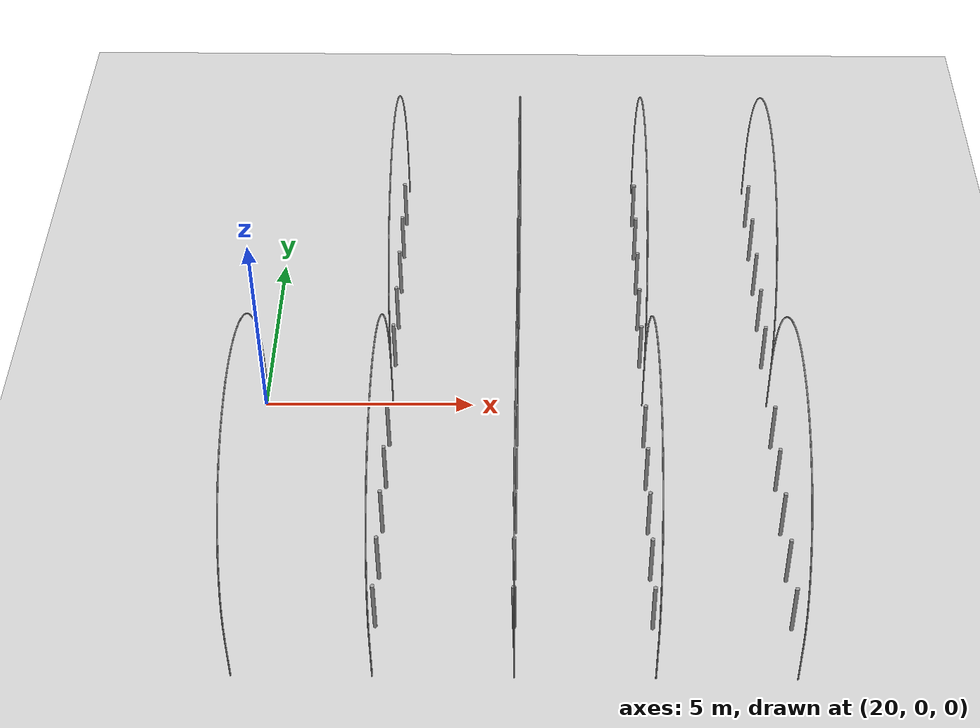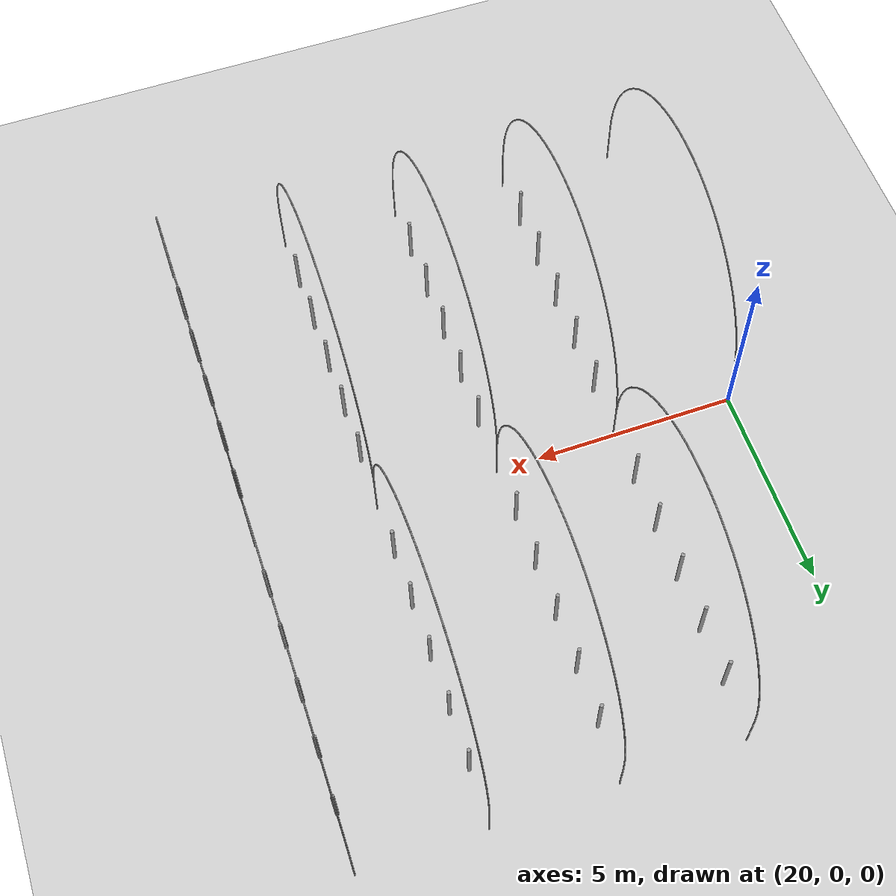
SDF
<sdf version="1.4">
 <world name="default">
  <model name="unit_cylinder_30">
   <static>1</static>
   <pose>23.06 1.35 0.691175 0.0 0.0 0.0</pose>
   <link name="link">
    <inertial>
     <mass>1</mass>
     <inertia><ixz>0</ixz><ixx>1</ixx><ixy>0</ixy><izz>1</izz><iyy>1</iyy><iyz>0</iyz></inertia>
    </inertial>
    <collision name="collision">
     <geometry><cylinder><length>1.38235</length><radius>0.0456111</radius></cylinder></geometry>
    </collision>
    <visual name="visual">
     <geometry><cylinder><length>1.38235</length><radius>0.0456111</radius></cylinder></geometry>
     <material>
      <script><uri>file://media/materials/scripts/gazebo.material</uri><name>Gazebo/Grey</name></script>
     </material>
    </visual>
    <velocity_decay><linear>0</linear><angular>0</angular></velocity_decay>
   </link>
  </model>
  <model name="unit_cylinder_31">
   <static>1</static>
   <pose>23.06 2.70 0.691175 0.0 0.0 0.0</pose>
   <link name="link">
    <inertial>
     <mass>1</mass>
     <inertia><ixz>0</ixz><ixx>1</ixx><ixy>0</ixy><izz>1</izz><iyy>1</iyy><iyz>0</iyz></inertia>
    </inertial>
    <collision name="collision">
     <geometry><cylinder><length>1.38235</length><radius>0.0456111</radius></cylinder></geometry>
    </collision>
    <visual name="visual">
     <geometry><cylinder><length>1.38235</length><radius>0.0456111</radius></cylinder></geometry>
     <material>
      <script><uri>file://media/materials/scripts/gazebo.material</uri><name>Gazebo/Grey</name></script>
     </material>
    </visual>
    <velocity_decay><linear>0</linear><angular>0</angular></velocity_decay>
   </link>
  </model>
  <model name="unit_cylinder_32">
   <static>1</static>
   <pose>23.06 4.05 0.691175 0.0 0.0 0.0</pose>
   <link name="link">
    <inertial>
     <mass>1</mass>
     <inertia><ixz>0</ixz><ixx>1</ixx><ixy>0</ixy><izz>1</izz><iyy>1</iyy><iyz>0</iyz></inertia>
    </inertial>
    <collision name="collision">
     <geometry><cylinder><length>1.38235</length><radius>0.0456111</radius></cylinder></geometry>
    </collision>
    <visual name="visual">
     <geometry><cylinder><length>1.38235</length><radius>0.0456111</radius></cylinder></geometry>
     <material>
      <script><uri>file://media/materials/scripts/gazebo.material</uri><name>Gazebo/Grey</name></script>
     </material>
    </visual>
    <velocity_decay><linear>0</linear><angular>0</angular></velocity_decay>
   </link>
  </model>
  <model name="unit_cylinder_33">
   <static>1</static>
   <pose>23.06 5.40 0.691175 0.0 0.0 0.0</pose>
   <link name="link">
    <inertial>
     <mass>1</mass>
     <inertia><ixz>0</ixz><ixx>1</ixx><ixy>0</ixy><izz>1</izz><iyy>1</iyy><iyz>0</iyz></inertia>
    </inertial>
    <collision name="collision">
     <geometry><cylinder><length>1.38235</length><radius>0.0456111</radius></cylinder></geometry>
    </collision>
    <visual name="visual">
     <geometry><cylinder><length>1.38235</length><radius>0.0456111</radius></cylinder></geometry>
     <material>
      <script><uri>file://media/materials/scripts/gazebo.material</uri><name>Gazebo/Grey</name></script>
     </material>
    </visual>
    <velocity_decay><linear>0</linear><angular>0</angular></velocity_decay>
   </link>
  </model>
  <model name="unit_cylinder_34">
   <static>1</static>
   <pose>23.06 6.75 0.691175 0.0 0.0 0.0</pose>
   <link name="link">
    <inertial>
     <mass>1</mass>
     <inertia><ixz>0</ixz><ixx>1</ixx><ixy>0</ixy><izz>1</izz><iyy>1</iyy><iyz>0</iyz></inertia>
    </inertial>
    <collision name="collision">
     <geometry><cylinder><length>1.38235</length><radius>0.0456111</radius></cylinder></geometry>
    </collision>
    <visual name="visual">
     <geometry><cylinder><length>1.38235</length><radius>0.0456111</radius></cylinder></geometry>
     <material>
      <script><uri>file://media/materials/scripts/gazebo.material</uri><name>Gazebo/Grey</name></script>
     </material>
    </visual>
    <velocity_decay><linear>0</linear><angular>0</angular></velocity_decay>
   </link>
  </model>
  <model name="unit_cylinder_35">
   <static>1</static>
   <pose>26.07 1.35 0.691175 0.0 0.0 0.0</pose>
   <link name="link">
    <inertial>
     <mass>1</mass>
     <inertia><ixz>0</ixz><ixx>1</ixx><ixy>0</ixy><izz>1</izz><iyy>1</iyy><iyz>0</iyz></inertia>
    </inertial>
    <collision name="collision">
     <geometry><cylinder><length>1.38235</length><radius>0.0456111</radius></cylinder></geometry>
    </collision>
    <visual name="visual">
     <geometry><cylinder><length>1.38235</length><radius>0.0456111</radius></cylinder></geometry>
     <material>
      <script><uri>file://media/materials/scripts/gazebo.material</uri><name>Gazebo/Grey</name></script>
     </material>
    </visual>
    <velocity_decay><linear>0</linear><angular>0</angular></velocity_decay>
   </link>
  </model>
  <model name="unit_cylinder_36">
   <static>1</static>
   <pose>26.07 2.70 0.691175 0.0 0.0 0.0</pose>
   <link name="link">
    <inertial>
     <mass>1</mass>
     <inertia><ixz>0</ixz><ixx>1</ixx><ixy>0</ixy><izz>1</izz><iyy>1</iyy><iyz>0</iyz></inertia>
    </inertial>
    <collision name="collision">
     <geometry><cylinder><length>1.38235</length><radius>0.0456111</radius></cylinder></geometry>
    </collision>
    <visual name="visual">
     <geometry><cylinder><length>1.38235</length><radius>0.0456111</radius></cylinder></geometry>
     <material>
      <script><uri>file://media/materials/scripts/gazebo.material</uri><name>Gazebo/Grey</name></script>
     </material>
    </visual>
    <velocity_decay><linear>0</linear><angular>0</angular></velocity_decay>
   </link>
  </model>
  <model name="unit_cylinder_37">
   <static>1</static>
   <pose>26.07 4.05 0.691175 0.0 0.0 0.0</pose>
   <link name="link">
    <inertial>
     <mass>1</mass>
     <inertia><ixz>0</ixz><ixx>1</ixx><ixy>0</ixy><izz>1</izz><iyy>1</iyy><iyz>0</iyz></inertia>
    </inertial>
    <collision name="collision">
     <geometry><cylinder><length>1.38235</length><radius>0.0456111</radius></cylinder></geometry>
    </collision>
    <visual name="visual">
     <geometry><cylinder><length>1.38235</length><radius>0.0456111</radius></cylinder></geometry>
     <material>
      <script><uri>file://media/materials/scripts/gazebo.material</uri><name>Gazebo/Grey</name></script>
     </material>
    </visual>
    <velocity_decay><linear>0</linear><angular>0</angular></velocity_decay>
   </link>
  </model>
  <model name="unit_cylinder_38">
   <static>1</static>
   <pose>26.07 5.40 0.691175 0.0 0.0 0.0</pose>
   <link name="link">
    <inertial>
     <mass>1</mass>
     <inertia><ixz>0</ixz><ixx>1</ixx><ixy>0</ixy><izz>1</izz><iyy>1</iyy><iyz>0</iyz></inertia>
    </inertial>
    <collision name="collision">
     <geometry><cylinder><length>1.38235</length><radius>0.0456111</radius></cylinder></geometry>
    </collision>
    <visual name="visual">
     <geometry><cylinder><length>1.38235</length><radius>0.0456111</radius></cylinder></geometry>
     <material>
      <script><uri>file://media/materials/scripts/gazebo.material</uri><name>Gazebo/Grey</name></script>
     </material>
    </visual>
    <velocity_decay><linear>0</linear><angular>0</angular></velocity_decay>
   </link>
  </model>
  <model name="unit_cylinder_39">
   <static>1</static>
   <pose>26.07 6.75 0.691175 0.0 0.0 0.0</pose>
   <link name="link">
    <inertial>
     <mass>1</mass>
     <inertia><ixz>0</ixz><ixx>1</ixx><ixy>0</ixy><izz>1</izz><iyy>1</iyy><iyz>0</iyz></inertia>
    </inertial>
    <collision name="collision">
     <geometry><cylinder><length>1.38235</length><radius>0.0456111</radius></cylinder></geometry>
    </collision>
    <visual name="visual">
     <geometry><cylinder><length>1.38235</length><radius>0.0456111</radius></cylinder></geometry>
     <material>
      <script><uri>file://media/materials/scripts/gazebo.material</uri><name>Gazebo/Grey</name></script>
     </material>
    </visual>
    <velocity_decay><linear>0</linear><angular>0</angular></velocity_decay>
   </link>
  </model>
  <model name="unit_cylinder_40">
   <static>1</static>
   <pose>29.08 1.35 0.691175 0.0 0.0 0.0</pose>
   <link name="link">
    <inertial>
     <mass>1</mass>
     <inertia><ixz>0</ixz><ixx>1</ixx><ixy>0</ixy><izz>1</izz><iyy>1</iyy><iyz>0</iyz></inertia>
    </inertial>
    <collision name="collision">
     <geometry><cylinder><length>1.38235</length><radius>0.0456111</radius></cylinder></geometry>
    </collision>
    <visual name="visual">
     <geometry><cylinder><length>1.38235</length><radius>0.0456111</radius></cylinder></geometry>
     <material>
      <script><uri>file://media/materials/scripts/gazebo.material</uri><name>Gazebo/Grey</name></script>
     </material>
    </visual>
    <velocity_decay><linear>0</linear><angular>0</angular></velocity_decay>
   </link>
  </model>
  <model name="unit_cylinder_41">
   <static>1</static>
   <pose>29.08 2.70 0.691175 0.0 0.0 0.0</pose>
   <link name="link">
    <inertial>
     <mass>1</mass>
     <inertia><ixz>0</ixz><ixx>1</ixx><ixy>0</ixy><izz>1</izz><iyy>1</iyy><iyz>0</iyz></inertia>
    </inertial>
    <collision name="collision">
     <geometry><cylinder><length>1.38235</length><radius>0.0456111</radius></cylinder></geometry>
    </collision>
    <visual name="visual">
     <geometry><cylinder><length>1.38235</length><radius>0.0456111</radius></cylinder></geometry>
     <material>
      <script><uri>file://media/materials/scripts/gazebo.material</uri><name>Gazebo/Grey</name></script>
     </material>
    </visual>
    <velocity_decay><linear>0</linear><angular>0</angular></velocity_decay>
   </link>
  </model>
  <model name="unit_cylinder_42">
   <static>1</static>
   <pose>29.08 4.05 0.691175 0.0 0.0 0.0</pose>
   <link name="link">
    <inertial>
     <mass>1</mass>
     <inertia><ixz>0</ixz><ixx>1</ixx><ixy>0</ixy><izz>1</izz><iyy>1</iyy><iyz>0</iyz></inertia>
    </inertial>
    <collision name="collision">
     <geometry><cylinder><length>1.38235</length><radius>0.0456111</radius></cylinder></geometry>
    </collision>
    <visual name="visual">
     <geometry><cylinder><length>1.38235</length><radius>0.0456111</radius></cylinder></geometry>
     <material>
      <script><uri>file://media/materials/scripts/gazebo.material</uri><name>Gazebo/Grey</name></script>
     </material>
    </visual>
    <velocity_decay><linear>0</linear><angular>0</angular></velocity_decay>
   </link>
  </model>
  <model name="unit_cylinder_43">
   <static>1</static>
   <pose>29.08 5.40 0.691175 0.0 0.0 0.0</pose>
   <link name="link">
    <inertial>
     <mass>1</mass>
     <inertia><ixz>0</ixz><ixx>1</ixx><ixy>0</ixy><izz>1</izz><iyy>1</iyy><iyz>0</iyz></inertia>
    </inertial>
    <collision name="collision">
     <geometry><cylinder><length>1.38235</length><radius>0.0456111</radius></cylinder></geometry>
    </collision>
    <visual name="visual">
     <geometry><cylinder><length>1.38235</length><radius>0.0456111</radius></cylinder></geometry>
     <material>
      <script><uri>file://media/materials/scripts/gazebo.material</uri><name>Gazebo/Grey</name></script>
     </material>
    </visual>
    <velocity_decay><linear>0</linear><angular>0</angular></velocity_decay>
   </link>
  </model>
  <model name="unit_cylinder_44">
   <static>1</static>
   <pose>29.08 6.75 0.691175 0.0 0.0 0.0</pose>
   <link name="link">
    <inertial>
     <mass>1</mass>
     <inertia><ixz>0</ixz><ixx>1</ixx><ixy>0</ixy><izz>1</izz><iyy>1</iyy><iyz>0</iyz></inertia>
    </inertial>
    <collision name="collision">
     <geometry><cylinder><length>1.38235</length><radius>0.0456111</radius></cylinder></geometry>
    </collision>
    <visual name="visual">
     <geometry><cylinder><length>1.38235</length><radius>0.0456111</radius></cylinder></geometry>
     <material>
      <script><uri>file://media/materials/scripts/gazebo.material</uri><name>Gazebo/Grey</name></script>
     </material>
    </visual>
    <velocity_decay><linear>0</linear><angular>0</angular></velocity_decay>
   </link>
  </model>
  <model name="unit_cylinder_45">
   <static>1</static>
   <pose>32.09 1.35 0.691175 0.0 0.0 0.0</pose>
   <link name="link">
    <inertial>
     <mass>1</mass>
     <inertia><ixz>0</ixz><ixx>1</ixx><ixy>0</ixy><izz>1</izz><iyy>1</iyy><iyz>0</iyz></inertia>
    </inertial>
    <collision name="collision">
     <geometry><cylinder><length>1.38235</length><radius>0.0456111</radius></cylinder></geometry>
    </collision>
    <visual name="visual">
     <geometry><cylinder><length>1.38235</length><radius>0.0456111</radius></cylinder></geometry>
     <material>
      <script><uri>file://media/materials/scripts/gazebo.material</uri><name>Gazebo/Grey</name></script>
     </material>
    </visual>
    <velocity_decay><linear>0</linear><angular>0</angular></velocity_decay>
   </link>
  </model>
  <model name="unit_cylinder_46">
   <static>1</static>
   <pose>32.09 2.70 0.691175 0.0 0.0 0.0</pose>
   <link name="link">
    <inertial>
     <mass>1</mass>
     <inertia><ixz>0</ixz><ixx>1</ixx><ixy>0</ixy><izz>1</izz><iyy>1</iyy><iyz>0</iyz></inertia>
    </inertial>
    <collision name="collision">
     <geometry><cylinder><length>1.38235</length><radius>0.0456111</radius></cylinder></geometry>
    </collision>
    <visual name="visual">
     <geometry><cylinder><length>1.38235</length><radius>0.0456111</radius></cylinder></geometry>
     <material>
      <script><uri>file://media/materials/scripts/gazebo.material</uri><name>Gazebo/Grey</name></script>
     </material>
    </visual>
    <velocity_decay><linear>0</linear><angular>0</angular></velocity_decay>
   </link>
  </model>
  <model name="unit_cylinder_47">
   <static>1</static>
   <pose>32.09 4.05 0.691175 0.0 0.0 0.0</pose>
   <link name="link">
    <inertial>
     <mass>1</mass>
     <inertia><ixz>0</ixz><ixx>1</ixx><ixy>0</ixy><izz>1</izz><iyy>1</iyy><iyz>0</iyz></inertia>
    </inertial>
    <collision name="collision">
     <geometry><cylinder><length>1.38235</length><radius>0.0456111</radius></cylinder></geometry>
    </collision>
    <visual name="visual">
     <geometry><cylinder><length>1.38235</length><radius>0.0456111</radius></cylinder></geometry>
     <material>
      <script><uri>file://media/materials/scripts/gazebo.material</uri><name>Gazebo/Grey</name></script>
     </material>
    </visual>
    <velocity_decay><linear>0</linear><angular>0</angular></velocity_decay>
   </link>
  </model>
  <model name="unit_cylinder_48">
   <static>1</static>
   <pose>32.09 5.40 0.691175 0.0 0.0 0.0</pose>
   <link name="link">
    <inertial>
     <mass>1</mass>
     <inertia><ixz>0</ixz><ixx>1</ixx><ixy>0</ixy><izz>1</izz><iyy>1</iyy><iyz>0</iyz></inertia>
    </inertial>
    <collision name="collision">
     <geometry><cylinder><length>1.38235</length><radius>0.0456111</radius></cylinder></geometry>
    </collision>
    <visual name="visual">
     <geometry><cylinder><length>1.38235</length><radius>0.0456111</radius></cylinder></geometry>
     <material>
      <script><uri>file://media/materials/scripts/gazebo.material</uri><name>Gazebo/Grey</name></script>
     </material>
    </visual>
    <velocity_decay><linear>0</linear><angular>0</angular></velocity_decay>
   </link>
  </model>
  <model name="unit_cylinder_49">
   <static>1</static>
   <pose>32.09 6.75 0.691175 0.0 0.0 0.0</pose>
   <link name="link">
    <inertial>
     <mass>1</mass>
     <inertia><ixz>0</ixz><ixx>1</ixx><ixy>0</ixy><izz>1</izz><iyy>1</iyy><iyz>0</iyz></inertia>
    </inertial>
    <collision name="collision">
     <geometry><cylinder><length>1.38235</length><radius>0.0456111</radius></cylinder></geometry>
    </collision>
    <visual name="visual">
     <geometry><cylinder><length>1.38235</length><radius>0.0456111</radius></cylinder></geometry>
     <material>
      <script><uri>file://media/materials/scripts/gazebo.material</uri><name>Gazebo/Grey</name></script>
     </material>
    </visual>
    <velocity_decay><linear>0</linear><angular>0</angular></velocity_decay>
   </link>
  </model>
  <model name="dummy_arch_6">
   <static>1</static>
   <pose>23.06 0.00 0.0 1.570796 0.0 1.570796</pose>
   <link name="link">
    <inertial>
     <mass>1</mass>
     <inertia><ixz>0</ixz><ixx>10.0</ixx><ixy>0</ixy><izz>10.0</izz><iyy>1</iyy><iyz>10.0</iyz></inertia>
    </inertial>
    <collision name="collision">
     <geometry><mesh><uri>model://dummy_arch/dummy_arch.stl</uri></mesh></geometry>
    </collision>
    <visual name="visual">
     <geometry><mesh><uri>model://dummy_arch/dummy_arch.stl</uri></mesh></geometry>
     <material>
      <script><uri>file://media/materials/scripts/gazebo.material</uri><name>Gazebo/Grey</name></script>
     </material>
    </visual>
    <velocity_decay><linear>0</linear><angular>0</angular></velocity_decay>
   </link>
  </model>
  <model name="dummy_arch_7">
   <static>1</static>
   <pose>26.07 0.00 0.0 1.570796 0.0 1.570796</pose>
   <link name="link">
    <inertial>
     <mass>1</mass>
     <inertia><ixz>0</ixz><ixx>10.0</ixx><ixy>0</ixy><izz>10.0</izz><iyy>1</iyy><iyz>10.0</iyz></inertia>
    </inertial>
    <collision name="collision">
     <geometry><mesh><uri>model://dummy_arch/dummy_arch.stl</uri></mesh></geometry>
    </collision>
    <visual name="visual">
     <geometry><mesh><uri>model://dummy_arch/dummy_arch.stl</uri></mesh></geometry>
     <material>
      <script><uri>file://media/materials/scripts/gazebo.material</uri><name>Gazebo/Grey</name></script>
     </material>
    </visual>
    <velocity_decay><linear>0</linear><angular>0</angular></velocity_decay>
   </link>
  </model>
  <model name="dummy_arch_8">
   <static>1</static>
   <pose>29.08 0.00 0.0 1.570796 0.0 1.570796</pose>
   <link name="link">
    <inertial>
     <mass>1</mass>
     <inertia><ixz>0</ixz><ixx>10.0</ixx><ixy>0</ixy><izz>10.0</izz><iyy>1</iyy><iyz>10.0</iyz></inertia>
    </inertial>
    <collision name="collision">
     <geometry><mesh><uri>model://dummy_arch/dummy_arch.stl</uri></mesh></geometry>
    </collision>
    <visual name="visual">
     <geometry><mesh><uri>model://dummy_arch/dummy_arch.stl</uri></mesh></geometry>
     <material>
      <script><uri>file://media/materials/scripts/gazebo.material</uri><name>Gazebo/Grey</name></script>
     </material>
    </visual>
    <velocity_decay><linear>0</linear><angular>0</angular></velocity_decay>
   </link>
  </model>
  <model name="dummy_arch_9">
   <static>1</static>
   <pose>32.09 0.00 0.0 1.570796 0.0 1.570796</pose>
   <link name="link">
    <inertial>
     <mass>1</mass>
     <inertia><ixz>0</ixz><ixx>10.0</ixx><ixy>0</ixy><izz>10.0</izz><iyy>1</iyy><iyz>10.0</iyz></inertia>
    </inertial>
    <collision name="collision">
     <geometry><mesh><uri>model://dummy_arch/dummy_arch.stl</uri></mesh></geometry>
    </collision>
    <visual name="visual">
     <geometry><mesh><uri>model://dummy_arch/dummy_arch.stl</uri></mesh></geometry>
     <material>
      <script><uri>file://media/materials/scripts/gazebo.material</uri><name>Gazebo/Grey</name></script>
     </material>
    </visual>
    <velocity_decay><linear>0</linear><angular>0</angular></velocity_decay>
   </link>
  </model>
  <model name="unit_cylinder_80">
   <static>1</static>
   <pose>23.06 -6.75 0.691175 0.0 0.0 0.0</pose>
   <link name="link">
    <inertial>
     <mass>1</mass>
     <inertia><ixz>0</ixz><ixx>1</ixx><ixy>0</ixy><izz>1</izz><iyy>1</iyy><iyz>0</iyz></inertia>
    </inertial>
    <collision name="collision">
     <geometry><cylinder><length>1.38235</length><radius>0.0456111</radius></cylinder></geometry>
    </collision>
    <visual name="visual">
     <geometry><cylinder><length>1.38235</length><radius>0.0456111</radius></cylinder></geometry>
     <material>
      <script><uri>file://media/materials/scripts/gazebo.material</uri><name>Gazebo/Grey</name></script>
     </material>
    </visual>
    <velocity_decay><linear>0</linear><angular>0</angular></velocity_decay>
   </link>
  </model>
  <model name="unit_cylinder_81">
   <static>1</static>
   <pose>23.06 -5.40 0.691175 0.0 0.0 0.0</pose>
   <link name="link">
    <inertial>
     <mass>1</mass>
     <inertia><ixz>0</ixz><ixx>1</ixx><ixy>0</ixy><izz>1</izz><iyy>1</iyy><iyz>0</iyz></inertia>
    </inertial>
    <collision name="collision">
     <geometry><cylinder><length>1.38235</length><radius>0.0456111</radius></cylinder></geometry>
    </collision>
    <visual name="visual">
     <geometry><cylinder><length>1.38235</length><radius>0.0456111</radius></cylinder></geometry>
     <material>
      <script><uri>file://media/materials/scripts/gazebo.material</uri><name>Gazebo/Grey</name></script>
     </material>
    </visual>
    <velocity_decay><linear>0</linear><angular>0</angular></velocity_decay>
   </link>
  </model>
  <model name="unit_cylinder_82">
   <static>1</static>
   <pose>23.06 -4.05 0.691175 0.0 0.0 0.0</pose>
   <link name="link">
    <inertial>
     <mass>1</mass>
     <inertia><ixz>0</ixz><ixx>1</ixx><ixy>0</ixy><izz>1</izz><iyy>1</iyy><iyz>0</iyz></inertia>
    </inertial>
    <collision name="collision">
     <geometry><cylinder><length>1.38235</length><radius>0.0456111</radius></cylinder></geometry>
    </collision>
    <visual name="visual">
     <geometry><cylinder><length>1.38235</length><radius>0.0456111</radius></cylinder></geometry>
     <material>
      <script><uri>file://media/materials/scripts/gazebo.material</uri><name>Gazebo/Grey</name></script>
     </material>
    </visual>
    <velocity_decay><linear>0</linear><angular>0</angular></velocity_decay>
   </link>
  </model>
  <model name="unit_cylinder_83">
   <static>1</static>
   <pose>23.06 -2.70 0.691175 0.0 0.0 0.0</pose>
   <link name="link">
    <inertial>
     <mass>1</mass>
     <inertia><ixz>0</ixz><ixx>1</ixx><ixy>0</ixy><izz>1</izz><iyy>1</iyy><iyz>0</iyz></inertia>
    </inertial>
    <collision name="collision">
     <geometry><cylinder><length>1.38235</length><radius>0.0456111</radius></cylinder></geometry>
    </collision>
    <visual name="visual">
     <geometry><cylinder><length>1.38235</length><radius>0.0456111</radius></cylinder></geometry>
     <material>
      <script><uri>file://media/materials/scripts/gazebo.material</uri><name>Gazebo/Grey</name></script>
     </material>
    </visual>
    <velocity_decay><linear>0</linear><angular>0</angular></velocity_decay>
   </link>
  </model>
  <model name="unit_cylinder_84">
   <static>1</static>
   <pose>23.06 -1.35 0.691175 0.0 0.0 0.0</pose>
   <link name="link">
    <inertial>
     <mass>1</mass>
     <inertia><ixz>0</ixz><ixx>1</ixx><ixy>0</ixy><izz>1</izz><iyy>1</iyy><iyz>0</iyz></inertia>
    </inertial>
    <collision name="collision">
     <geometry><cylinder><length>1.38235</length><radius>0.0456111</radius></cylinder></geometry>
    </collision>
    <visual name="visual">
     <geometry><cylinder><length>1.38235</length><radius>0.0456111</radius></cylinder></geometry>
     <material>
      <script><uri>file://media/materials/scripts/gazebo.material</uri><name>Gazebo/Grey</name></script>
     </material>
    </visual>
    <velocity_decay><linear>0</linear><angular>0</angular></velocity_decay>
   </link>
  </model>
  <model name="unit_cylinder_85">
   <static>1</static>
   <pose>26.07 -6.75 0.691175 0.0 0.0 0.0</pose>
   <link name="link">
    <inertial>
     <mass>1</mass>
     <inertia><ixz>0</ixz><ixx>1</ixx><ixy>0</ixy><izz>1</izz><iyy>1</iyy><iyz>0</iyz></inertia>
    </inertial>
    <collision name="collision">
     <geometry><cylinder><length>1.38235</length><radius>0.0456111</radius></cylinder></geometry>
    </collision>
    <visual name="visual">
     <geometry><cylinder><length>1.38235</length><radius>0.0456111</radius></cylinder></geometry>
     <material>
      <script><uri>file://media/materials/scripts/gazebo.material</uri><name>Gazebo/Grey</name></script>
     </material>
    </visual>
    <velocity_decay><linear>0</linear><angular>0</angular></velocity_decay>
   </link>
  </model>
  <model name="unit_cylinder_86">
   <static>1</static>
   <pose>26.07 -5.40 0.691175 0.0 0.0 0.0</pose>
   <link name="link">
    <inertial>
     <mass>1</mass>
     <inertia><ixz>0</ixz><ixx>1</ixx><ixy>0</ixy><izz>1</izz><iyy>1</iyy><iyz>0</iyz></inertia>
    </inertial>
    <collision name="collision">
     <geometry><cylinder><length>1.38235</length><radius>0.0456111</radius></cylinder></geometry>
    </collision>
    <visual name="visual">
     <geometry><cylinder><length>1.38235</length><radius>0.0456111</radius></cylinder></geometry>
     <material>
      <script><uri>file://media/materials/scripts/gazebo.material</uri><name>Gazebo/Grey</name></script>
     </material>
    </visual>
    <velocity_decay><linear>0</linear><angular>0</angular></velocity_decay>
   </link>
  </model>
  <model name="unit_cylinder_87">
   <static>1</static>
   <pose>26.07 -4.05 0.691175 0.0 0.0 0.0</pose>
   <link name="link">
    <inertial>
     <mass>1</mass>
     <inertia><ixz>0</ixz><ixx>1</ixx><ixy>0</ixy><izz>1</izz><iyy>1</iyy><iyz>0</iyz></inertia>
    </inertial>
    <collision name="collision">
     <geometry><cylinder><length>1.38235</length><radius>0.0456111</radius></cylinder></geometry>
    </collision>
    <visual name="visual">
     <geometry><cylinder><length>1.38235</length><radius>0.0456111</radius></cylinder></geometry>
     <material>
      <script><uri>file://media/materials/scripts/gazebo.material</uri><name>Gazebo/Grey</name></script>
     </material>
    </visual>
    <velocity_decay><linear>0</linear><angular>0</angular></velocity_decay>
   </link>
  </model>
  <model name="unit_cylinder_88">
   <static>1</static>
   <pose>26.07 -2.70 0.691175 0.0 0.0 0.0</pose>
   <link name="link">
    <inertial>
     <mass>1</mass>
     <inertia><ixz>0</ixz><ixx>1</ixx><ixy>0</ixy><izz>1</izz><iyy>1</iyy><iyz>0</iyz></inertia>
    </inertial>
    <collision name="collision">
     <geometry><cylinder><length>1.38235</length><radius>0.0456111</radius></cylinder></geometry>
    </collision>
    <visual name="visual">
     <geometry><cylinder><length>1.38235</length><radius>0.0456111</radius></cylinder></geometry>
     <material>
      <script><uri>file://media/materials/scripts/gazebo.material</uri><name>Gazebo/Grey</name></script>
     </material>
    </visual>
    <velocity_decay><linear>0</linear><angular>0</angular></velocity_decay>
   </link>
  </model>
  <model name="unit_cylinder_89">
   <static>1</static>
   <pose>26.07 -1.35 0.691175 0.0 0.0 0.0</pose>
   <link name="link">
    <inertial>
     <mass>1</mass>
     <inertia><ixz>0</ixz><ixx>1</ixx><ixy>0</ixy><izz>1</izz><iyy>1</iyy><iyz>0</iyz></inertia>
    </inertial>
    <collision name="collision">
     <geometry><cylinder><length>1.38235</length><radius>0.0456111</radius></cylinder></geometry>
    </collision>
    <visual name="visual">
     <geometry><cylinder><length>1.38235</length><radius>0.0456111</radius></cylinder></geometry>
     <material>
      <script><uri>file://media/materials/scripts/gazebo.material</uri><name>Gazebo/Grey</name></script>
     </material>
    </visual>
    <velocity_decay><linear>0</linear><angular>0</angular></velocity_decay>
   </link>
  </model>
  <model name="unit_cylinder_90">
   <static>1</static>
   <pose>29.08 -6.75 0.691175 0.0 0.0 0.0</pose>
   <link name="link">
    <inertial>
     <mass>1</mass>
     <inertia><ixz>0</ixz><ixx>1</ixx><ixy>0</ixy><izz>1</izz><iyy>1</iyy><iyz>0</iyz></inertia>
    </inertial>
    <collision name="collision">
     <geometry><cylinder><length>1.38235</length><radius>0.0456111</radius></cylinder></geometry>
    </collision>
    <visual name="visual">
     <geometry><cylinder><length>1.38235</length><radius>0.0456111</radius></cylinder></geometry>
     <material>
      <script><uri>file://media/materials/scripts/gazebo.material</uri><name>Gazebo/Grey</name></script>
     </material>
    </visual>
    <velocity_decay><linear>0</linear><angular>0</angular></velocity_decay>
   </link>
  </model>
  <model name="unit_cylinder_91">
   <static>1</static>
   <pose>29.08 -5.40 0.691175 0.0 0.0 0.0</pose>
   <link name="link">
    <inertial>
     <mass>1</mass>
     <inertia><ixz>0</ixz><ixx>1</ixx><ixy>0</ixy><izz>1</izz><iyy>1</iyy><iyz>0</iyz></inertia>
    </inertial>
    <collision name="collision">
     <geometry><cylinder><length>1.38235</length><radius>0.0456111</radius></cylinder></geometry>
    </collision>
    <visual name="visual">
     <geometry><cylinder><length>1.38235</length><radius>0.0456111</radius></cylinder></geometry>
     <material>
      <script><uri>file://media/materials/scripts/gazebo.material</uri><name>Gazebo/Grey</name></script>
     </material>
    </visual>
    <velocity_decay><linear>0</linear><angular>0</angular></velocity_decay>
   </link>
  </model>
  <model name="unit_cylinder_92">
   <static>1</static>
   <pose>29.08 -4.05 0.691175 0.0 0.0 0.0</pose>
   <link name="link">
    <inertial>
     <mass>1</mass>
     <inertia><ixz>0</ixz><ixx>1</ixx><ixy>0</ixy><izz>1</izz><iyy>1</iyy><iyz>0</iyz></inertia>
    </inertial>
    <collision name="collision">
     <geometry><cylinder><length>1.38235</length><radius>0.0456111</radius></cylinder></geometry>
    </collision>
    <visual name="visual">
     <geometry><cylinder><length>1.38235</length><radius>0.0456111</radius></cylinder></geometry>
     <material>
      <script><uri>file://media/materials/scripts/gazebo.material</uri><name>Gazebo/Grey</name></script>
     </material>
    </visual>
    <velocity_decay><linear>0</linear><angular>0</angular></velocity_decay>
   </link>
  </model>
  <model name="unit_cylinder_93">
   <static>1</static>
   <pose>29.08 -2.70 0.691175 0.0 0.0 0.0</pose>
   <link name="link">
    <inertial>
     <mass>1</mass>
     <inertia><ixz>0</ixz><ixx>1</ixx><ixy>0</ixy><izz>1</izz><iyy>1</iyy><iyz>0</iyz></inertia>
    </inertial>
    <collision name="collision">
     <geometry><cylinder><length>1.38235</length><radius>0.0456111</radius></cylinder></geometry>
    </collision>
    <visual name="visual">
     <geometry><cylinder><length>1.38235</length><radius>0.0456111</radius></cylinder></geometry>
     <material>
      <script><uri>file://media/materials/scripts/gazebo.material</uri><name>Gazebo/Grey</name></script>
     </material>
    </visual>
    <velocity_decay><linear>0</linear><angular>0</angular></velocity_decay>
   </link>
  </model>
  <model name="unit_cylinder_94">
   <static>1</static>
   <pose>29.08 -1.35 0.691175 0.0 0.0 0.0</pose>
   <link name="link">
    <inertial>
     <mass>1</mass>
     <inertia><ixz>0</ixz><ixx>1</ixx><ixy>0</ixy><izz>1</izz><iyy>1</iyy><iyz>0</iyz></inertia>
    </inertial>
    <collision name="collision">
     <geometry><cylinder><length>1.38235</length><radius>0.0456111</radius></cylinder></geometry>
    </collision>
    <visual name="visual">
     <geometry><cylinder><length>1.38235</length><radius>0.0456111</radius></cylinder></geometry>
     <material>
      <script><uri>file://media/materials/scripts/gazebo.material</uri><name>Gazebo/Grey</name></script>
     </material>
    </visual>
    <velocity_decay><linear>0</linear><angular>0</angular></velocity_decay>
   </link>
  </model>
  <model name="unit_cylinder_95">
   <static>1</static>
   <pose>32.09 -6.75 0.691175 0.0 0.0 0.0</pose>
   <link name="link">
    <inertial>
     <mass>1</mass>
     <inertia><ixz>0</ixz><ixx>1</ixx><ixy>0</ixy><izz>1</izz><iyy>1</iyy><iyz>0</iyz></inertia>
    </inertial>
    <collision name="collision">
     <geometry><cylinder><length>1.38235</length><radius>0.0456111</radius></cylinder></geometry>
    </collision>
    <visual name="visual">
     <geometry><cylinder><length>1.38235</length><radius>0.0456111</radius></cylinder></geometry>
     <material>
      <script><uri>file://media/materials/scripts/gazebo.material</uri><name>Gazebo/Grey</name></script>
     </material>
    </visual>
    <velocity_decay><linear>0</linear><angular>0</angular></velocity_decay>
   </link>
  </model>
  <model name="unit_cylinder_96">
   <static>1</static>
   <pose>32.09 -5.40 0.691175 0.0 0.0 0.0</pose>
   <link name="link">
    <inertial>
     <mass>1</mass>
     <inertia><ixz>0</ixz><ixx>1</ixx><ixy>0</ixy><izz>1</izz><iyy>1</iyy><iyz>0</iyz></inertia>
    </inertial>
    <collision name="collision">
     <geometry><cylinder><length>1.38235</length><radius>0.0456111</radius></cylinder></geometry>
    </collision>
    <visual name="visual">
     <geometry><cylinder><length>1.38235</length><radius>0.0456111</radius></cylinder></geometry>
     <material>
      <script><uri>file://media/materials/scripts/gazebo.material</uri><name>Gazebo/Grey</name></script>
     </material>
    </visual>
    <velocity_decay><linear>0</linear><angular>0</angular></velocity_decay>
   </link>
  </model>
  <model name="unit_cylinder_97">
   <static>1</static>
   <pose>32.09 -4.05 0.691175 0.0 0.0 0.0</pose>
   <link name="link">
    <inertial>
     <mass>1</mass>
     <inertia><ixz>0</ixz><ixx>1</ixx><ixy>0</ixy><izz>1</izz><iyy>1</iyy><iyz>0</iyz></inertia>
    </inertial>
    <collision name="collision">
     <geometry><cylinder><length>1.38235</length><radius>0.0456111</radius></cylinder></geometry>
    </collision>
    <visual name="visual">
     <geometry><cylinder><length>1.38235</length><radius>0.0456111</radius></cylinder></geometry>
     <material>
      <script><uri>file://media/materials/scripts/gazebo.material</uri><name>Gazebo/Grey</name></script>
     </material>
    </visual>
    <velocity_decay><linear>0</linear><angular>0</angular></velocity_decay>
   </link>
  </model>
  <model name="unit_cylinder_98">
   <static>1</static>
   <pose>32.09 -2.70 0.691175 0.0 0.0 0.0</pose>
   <link name="link">
    <inertial>
     <mass>1</mass>
     <inertia><ixz>0</ixz><ixx>1</ixx><ixy>0</ixy><izz>1</izz><iyy>1</iyy><iyz>0</iyz></inertia>
    </inertial>
    <collision name="collision">
     <geometry><cylinder><length>1.38235</length><radius>0.0456111</radius></cylinder></geometry>
    </collision>
    <visual name="visual">
     <geometry><cylinder><length>1.38235</length><radius>0.0456111</radius></cylinder></geometry>
     <material>
      <script><uri>file://media/materials/scripts/gazebo.material</uri><name>Gazebo/Grey</name></script>
     </material>
    </visual>
    <velocity_decay><linear>0</linear><angular>0</angular></velocity_decay>
   </link>
  </model>
  <model name="unit_cylinder_99">
   <static>1</static>
   <pose>32.09 -1.35 0.691175 0.0 0.0 0.0</pose>
   <link name="link">
    <inertial>
     <mass>1</mass>
     <inertia><ixz>0</ixz><ixx>1</ixx><ixy>0</ixy><izz>1</izz><iyy>1</iyy><iyz>0</iyz></inertia>
    </inertial>
    <collision name="collision">
     <geometry><cylinder><length>1.38235</length><radius>0.0456111</radius></cylinder></geometry>
    </collision>
    <visual name="visual">
     <geometry><cylinder><length>1.38235</length><radius>0.0456111</radius></cylinder></geometry>
     <material>
      <script><uri>file://media/materials/scripts/gazebo.material</uri><name>Gazebo/Grey</name></script>
     </material>
    </visual>
    <velocity_decay><linear>0</linear><angular>0</angular></velocity_decay>
   </link>
  </model>
  <model name="dummy_arch_15">
   <static>1</static>
   <pose>20.05 -8.10 0.0 1.570796 0.0 1.570796</pose>
   <link name="link">
    <inertial>
     <mass>1</mass>
     <inertia><ixz>0</ixz><ixx>10.0</ixx><ixy>0</ixy><izz>10.0</izz><iyy>1</iyy><iyz>10.0</iyz></inertia>
    </inertial>
    <collision name="collision">
     <geometry><mesh><uri>model://dummy_arch/dummy_arch.stl</uri></mesh></geometry>
    </collision>
    <visual name="visual">
     <geometry><mesh><uri>model://dummy_arch/dummy_arch.stl</uri></mesh></geometry>
     <material>
      <script><uri>file://media/materials/scripts/gazebo.material</uri><name>Gazebo/Grey</name></script>
     </material>
    </visual>
    <velocity_decay><linear>0</linear><angular>0</angular></velocity_decay>
   </link>
  </model>
  <model name="dummy_arch_16">
   <static>1</static>
   <pose>23.06 -8.10 0.0 1.570796 0.0 1.570796</pose>
   <link name="link">
    <inertial>
     <mass>1</mass>
     <inertia><ixz>0</ixz><ixx>10.0</ixx><ixy>0</ixy><izz>10.0</izz><iyy>1</iyy><iyz>10.0</iyz></inertia>
    </inertial>
    <collision name="collision">
     <geometry><mesh><uri>model://dummy_arch/dummy_arch.stl</uri></mesh></geometry>
    </collision>
    <visual name="visual">
     <geometry><mesh><uri>model://dummy_arch/dummy_arch.stl</uri></mesh></geometry>
     <material>
      <script><uri>file://media/materials/scripts/gazebo.material</uri><name>Gazebo/Grey</name></script>
     </material>
    </visual>
    <velocity_decay><linear>0</linear><angular>0</angular></velocity_decay>
   </link>
  </model>
  <model name="dummy_arch_17">
   <static>1</static>
   <pose>26.07 -8.10 0.0 1.570796 0.0 1.570796</pose>
   <link name="link">
    <inertial>
     <mass>1</mass>
     <inertia><ixz>0</ixz><ixx>10.0</ixx><ixy>0</ixy><izz>10.0</izz><iyy>1</iyy><iyz>10.0</iyz></inertia>
    </inertial>
    <collision name="collision">
     <geometry><mesh><uri>model://dummy_arch/dummy_arch.stl</uri></mesh></geometry>
    </collision>
    <visual name="visual">
     <geometry><mesh><uri>model://dummy_arch/dummy_arch.stl</uri></mesh></geometry>
     <material>
      <script><uri>file://media/materials/scripts/gazebo.material</uri><name>Gazebo/Grey</name></script>
     </material>
    </visual>
    <velocity_decay><linear>0</linear><angular>0</angular></velocity_decay>
   </link>
  </model>
  <model name="dummy_arch_18">
   <static>1</static>
   <pose>29.08 -8.10 0.0 1.570796 0.0 1.570796</pose>
   <link name="link">
    <inertial>
     <mass>1</mass>
     <inertia><ixz>0</ixz><ixx>10.0</ixx><ixy>0</ixy><izz>10.0</izz><iyy>1</iyy><iyz>10.0</iyz></inertia>
    </inertial>
    <collision name="collision">
     <geometry><mesh><uri>model://dummy_arch/dummy_arch.stl</uri></mesh></geometry>
    </collision>
    <visual name="visual">
     <geometry><mesh><uri>model://dummy_arch/dummy_arch.stl</uri></mesh></geometry>
     <material>
      <script><uri>file://media/materials/scripts/gazebo.material</uri><name>Gazebo/Grey</name></script>
     </material>
    </visual>
    <velocity_decay><linear>0</linear><angular>0</angular></velocity_decay>
   </link>
  </model>
  <model name="dummy_arch_19">
   <static>1</static>
   <pose>32.09 -8.10 0.0 1.570796 0.0 1.570796</pose>
   <link name="link">
    <inertial>
     <mass>1</mass>
     <inertia><ixz>0</ixz><ixx>10.0</ixx><ixy>0</ixy><izz>10.0</izz><iyy>1</iyy><iyz>10.0</iyz></inertia>
    </inertial>
    <collision name="collision">
     <geometry><mesh><uri>model://dummy_arch/dummy_arch.stl</uri></mesh></geometry>
    </collision>
    <visual name="visual">
     <geometry><mesh><uri>model://dummy_arch/dummy_arch.stl</uri></mesh></geometry>
     <material>
      <script><uri>file://media/materials/scripts/gazebo.material</uri><name>Gazebo/Grey</name></script>
     </material>
    </visual>
    <velocity_decay><linear>0</linear><angular>0</angular></velocity_decay>
   </link>
  </model>
  <include><uri>model://sun</uri></include>
  <include><uri>model://ground_plane</uri></include>
 </world>
</sdf>
